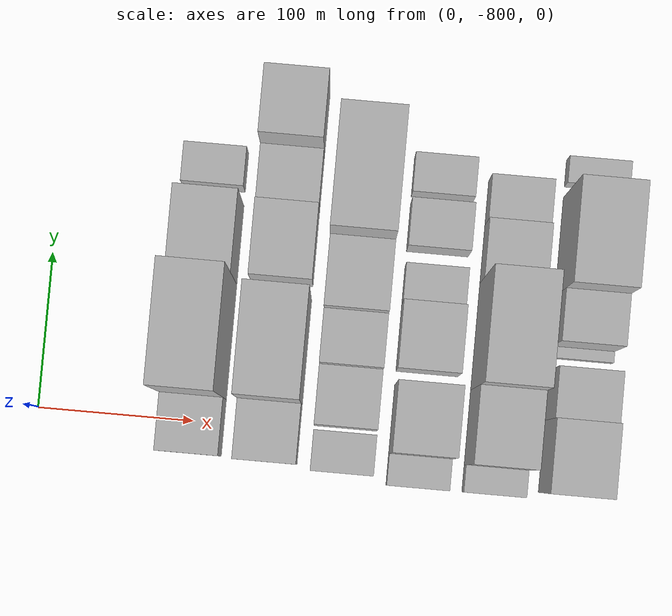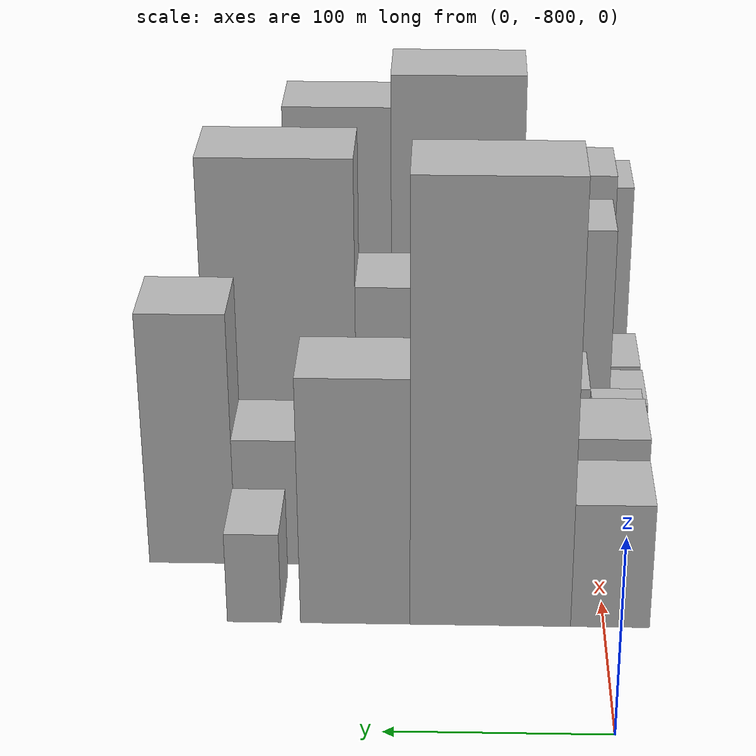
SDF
<sdf version="1.6">
 <world name="default">
  <model name="building_1">
   <static>1</static>
   <pose>100.0000 -802.7272 0 0.000000 0.000000 0.000000</pose>
   <link name="link">
    <pose>0 0 33.00 0 0 0</pose>
    <collision name="collision"><geometry><box><size>40.0000 36.5455 66.0000</size></box></geometry></collision>
    <visual name="visual">
     <cast_shadows>0</cast_shadows>
     <geometry><box><size>40.0000 36.5455 66.0000</size></box></geometry>
     <material>
      <script>
       <uri>model://HANNAS_wall/materials/scripts</uri>
       <uri>model://HANNAS_wall/materials/textures</uri>
       <name>vrc/HANNAS_wall</name>
      </script>
     </material>
    </visual>
   </link>
  </model>
  <model name="building_2">
   <static>1</static>
   <pose>100.0000 -747.2606 0 0.000000 0.000000 0.000000</pose>
   <link name="link">
    <pose>0 0 112.50 0 0 0</pose>
    <collision name="collision"><geometry><box><size>40.0000 74.3877 225.0000</size></box></geometry></collision>
    <visual name="visual">
     <cast_shadows>0</cast_shadows>
     <geometry><box><size>40.0000 74.3877 225.0000</size></box></geometry>
     <material>
      <script>
       <uri>model://HANNAS_wall/materials/scripts</uri>
       <uri>model://HANNAS_wall/materials/textures</uri>
       <name>vrc/HANNAS_wall</name>
      </script>
     </material>
    </visual>
   </link>
  </model>
  <model name="building_3">
   <static>1</static>
   <pose>100.0000 -684.5921 0 0.000000 0.000000 0.000000</pose>
   <link name="link">
    <pose>0 0 64.50 0 0 0</pose>
    <collision name="collision"><geometry><box><size>40.0000 50.9493 129.0000</size></box></geometry></collision>
    <visual name="visual">
     <cast_shadows>0</cast_shadows>
     <geometry><box><size>40.0000 50.9493 129.0000</size></box></geometry>
     <material>
      <script>
       <uri>model://HANNAS_wall/materials/scripts</uri>
       <uri>model://HANNAS_wall/materials/textures</uri>
       <name>vrc/HANNAS_wall</name>
      </script>
     </material>
    </visual>
   </link>
  </model>
  <model name="building_4">
   <static>1</static>
   <pose>100.0000 -637.5863 0 0.000000 0.000000 0.000000</pose>
   <link name="link">
    <pose>0 0 24.00 0 0 0</pose>
    <collision name="collision"><geometry><box><size>40.0000 25.0623 48.0000</size></box></geometry></collision>
    <visual name="visual">
     <cast_shadows>0</cast_shadows>
     <geometry><box><size>40.0000 25.0623 48.0000</size></box></geometry>
     <material>
      <script>
       <uri>model://HANNAS_wall/materials/scripts</uri>
       <uri>model://HANNAS_wall/materials/textures</uri>
       <name>vrc/HANNAS_wall</name>
      </script>
     </material>
    </visual>
   </link>
  </model>
  <model name="building_44">
   <static>1</static>
   <pose>149.0000 -803.0353 0 0.000000 0.000000 0.000000</pose>
   <link name="link">
    <pose>0 0 36.00 0 0 0</pose>
    <collision name="collision"><geometry><box><size>40.0000 37.9294 72.0000</size></box></geometry></collision>
    <visual name="visual">
     <cast_shadows>0</cast_shadows>
     <geometry><box><size>40.0000 37.9294 72.0000</size></box></geometry>
     <material>
      <script>
       <uri>model://HANNAS_wall/materials/scripts</uri>
       <uri>model://HANNAS_wall/materials/textures</uri>
       <name>vrc/HANNAS_wall</name>
      </script>
     </material>
    </visual>
   </link>
  </model>
  <model name="building_45">
   <static>1</static>
   <pose>149.0000 -750.1033 0 0.000000 0.000000 0.000000</pose>
   <link name="link">
    <pose>0 0 88.50 0 0 0</pose>
    <collision name="collision"><geometry><box><size>40.0000 67.9345 177.0000</size></box></geometry></collision>
    <visual name="visual">
     <cast_shadows>0</cast_shadows>
     <geometry><box><size>40.0000 67.9345 177.0000</size></box></geometry>
     <material>
      <script>
       <uri>model://HANNAS_wall/materials/scripts</uri>
       <uri>model://HANNAS_wall/materials/textures</uri>
       <name>vrc/HANNAS_wall</name>
      </script>
     </material>
    </visual>
   </link>
  </model>
  <model name="building_46">
   <static>1</static>
   <pose>149.0000 -683.1631 0 0.000000 0.000000 0.000000</pose>
   <link name="link">
    <pose>0 0 40.50 0 0 0</pose>
    <collision name="collision"><geometry><box><size>40.0000 47.9459 81.0000</size></box></geometry></collision>
    <visual name="visual">
     <cast_shadows>0</cast_shadows>
     <geometry><box><size>40.0000 47.9459 81.0000</size></box></geometry>
     <material>
      <script>
       <uri>model://HANNAS_wall/materials/scripts</uri>
       <uri>model://HANNAS_wall/materials/textures</uri>
       <name>vrc/HANNAS_wall</name>
      </script>
     </material>
    </visual>
   </link>
  </model>
  <model name="building_47">
   <static>1</static>
   <pose>149.0000 -641.7126 0 0.000000 0.000000 0.000000</pose>
   <link name="link">
    <pose>0 0 34.50 0 0 0</pose>
    <collision name="collision"><geometry><box><size>40.0000 34.9551 69.0000</size></box></geometry></collision>
    <visual name="visual">
     <cast_shadows>0</cast_shadows>
     <geometry><box><size>40.0000 34.9551 69.0000</size></box></geometry>
     <material>
      <script>
       <uri>model://HANNAS_wall/materials/scripts</uri>
       <uri>model://HANNAS_wall/materials/textures</uri>
       <name>vrc/HANNAS_wall</name>
      </script>
     </material>
    </visual>
   </link>
  </model>
  <model name="building_48">
   <static>1</static>
   <pose>149.0000 -603.1813 0 0.000000 0.000000 0.000000</pose>
   <link name="link">
    <pose>0 0 67.50 0 0 0</pose>
    <collision name="collision"><geometry><box><size>40.0000 42.1076 135.0000</size></box></geometry></collision>
    <visual name="visual">
     <cast_shadows>0</cast_shadows>
     <geometry><box><size>40.0000 42.1076 135.0000</size></box></geometry>
     <material>
      <script>
       <uri>model://HANNAS_wall/materials/scripts</uri>
       <uri>model://HANNAS_wall/materials/textures</uri>
       <name>vrc/HANNAS_wall</name>
      </script>
     </material>
    </visual>
   </link>
  </model>
  <model name="building_84">
   <static>1</static>
   <pose>198.0000 -812.0581 0 0.000000 0.000000 0.000000</pose>
   <link name="link">
    <pose>0 0 25.50 0 0 0</pose>
    <collision name="collision"><geometry><box><size>40.0000 25.8838 51.0000</size></box></geometry></collision>
    <visual name="visual">
     <cast_shadows>0</cast_shadows>
     <geometry><box><size>40.0000 25.8838 51.0000</size></box></geometry>
     <material>
      <script>
       <uri>model://HANNAS_wall/materials/scripts</uri>
       <uri>model://HANNAS_wall/materials/textures</uri>
       <name>vrc/HANNAS_wall</name>
      </script>
     </material>
    </visual>
   </link>
  </model>
  <model name="building_85">
   <static>1</static>
   <pose>198.0000 -777.2414 0 0.000000 0.000000 0.000000</pose>
   <link name="link">
    <pose>0 0 36.00 0 0 0</pose>
    <collision name="collision"><geometry><box><size>40.0000 37.7497 72.0000</size></box></geometry></collision>
    <visual name="visual">
     <cast_shadows>0</cast_shadows>
     <geometry><box><size>40.0000 37.7497 72.0000</size></box></geometry>
     <material>
      <script>
       <uri>model://HANNAS_wall/materials/scripts</uri>
       <uri>model://HANNAS_wall/materials/textures</uri>
       <name>vrc/HANNAS_wall</name>
      </script>
     </material>
    </visual>
   </link>
  </model>
  <model name="building_86">
   <static>1</static>
   <pose>198.0000 -741.5495 0 0.000000 0.000000 0.000000</pose>
   <link name="link">
    <pose>0 0 49.50 0 0 0</pose>
    <collision name="collision"><geometry><box><size>40.0000 33.6341 99.0000</size></box></geometry></collision>
    <visual name="visual">
     <cast_shadows>0</cast_shadows>
     <geometry><box><size>40.0000 33.6341 99.0000</size></box></geometry>
     <material>
      <script>
       <uri>model://HANNAS_wall/materials/scripts</uri>
       <uri>model://HANNAS_wall/materials/textures</uri>
       <name>vrc/HANNAS_wall</name>
      </script>
     </material>
    </visual>
   </link>
  </model>
  <model name="building_87">
   <static>1</static>
   <pose>198.0000 -702.9421 0 0.000000 0.000000 0.000000</pose>
   <link name="link">
    <pose>0 0 63.00 0 0 0</pose>
    <collision name="collision"><geometry><box><size>40.0000 43.5806 126.0000</size></box></geometry></collision>
    <visual name="visual">
     <cast_shadows>0</cast_shadows>
     <geometry><box><size>40.0000 43.5806 126.0000</size></box></geometry>
     <material>
      <script>
       <uri>model://HANNAS_wall/materials/scripts</uri>
       <uri>model://HANNAS_wall/materials/textures</uri>
       <name>vrc/HANNAS_wall</name>
      </script>
     </material>
    </visual>
   </link>
  </model>
  <model name="building_88">
   <static>1</static>
   <pose>198.0000 -643.9650 0 0.000000 0.000000 0.000000</pose>
   <link name="link">
    <pose>0 0 96.00 0 0 0</pose>
    <collision name="collision"><geometry><box><size>40.0000 74.3737 192.0000</size></box></geometry></collision>
    <visual name="visual">
     <cast_shadows>0</cast_shadows>
     <geometry><box><size>40.0000 74.3737 192.0000</size></box></geometry>
     <material>
      <script>
       <uri>model://HANNAS_wall/materials/scripts</uri>
       <uri>model://HANNAS_wall/materials/textures</uri>
       <name>vrc/HANNAS_wall</name>
      </script>
     </material>
    </visual>
   </link>
  </model>
  <model name="building_124">
   <static>1</static>
   <pose>247.0000 -819.8785 0 0.000000 0.000000 0.000000</pose>
   <link name="link">
    <pose>0 0 18.00 0 0 0</pose>
    <collision name="collision"><geometry><box><size>40.0000 20.2429 36.0000</size></box></geometry></collision>
    <visual name="visual">
     <cast_shadows>0</cast_shadows>
     <geometry><box><size>40.0000 20.2429 36.0000</size></box></geometry>
     <material>
      <script>
       <uri>model://HANNAS_wall/materials/scripts</uri>
       <uri>model://HANNAS_wall/materials/textures</uri>
       <name>vrc/HANNAS_wall</name>
      </script>
     </material>
    </visual>
   </link>
  </model>
  <model name="building_125">
   <static>1</static>
   <pose>247.0000 -787.7049 0 0.000000 0.000000 0.000000</pose>
   <link name="link">
    <pose>0 0 67.50 0 0 0</pose>
    <collision name="collision"><geometry><box><size>40.0000 44.1044 135.0000</size></box></geometry></collision>
    <visual name="visual">
     <cast_shadows>0</cast_shadows>
     <geometry><box><size>40.0000 44.1044 135.0000</size></box></geometry>
     <material>
      <script>
       <uri>model://HANNAS_wall/materials/scripts</uri>
       <uri>model://HANNAS_wall/materials/textures</uri>
       <name>vrc/HANNAS_wall</name>
      </script>
     </material>
    </visual>
   </link>
  </model>
  <model name="building_126">
   <static>1</static>
   <pose>247.0000 -735.1640 0 0.000000 0.000000 0.000000</pose>
   <link name="link">
    <pose>0 0 37.50 0 0 0</pose>
    <collision name="collision"><geometry><box><size>40.0000 42.9772 75.0000</size></box></geometry></collision>
    <visual name="visual">
     <cast_shadows>0</cast_shadows>
     <geometry><box><size>40.0000 42.9772 75.0000</size></box></geometry>
     <material>
      <script>
       <uri>model://HANNAS_wall/materials/scripts</uri>
       <uri>model://HANNAS_wall/materials/textures</uri>
       <name>vrc/HANNAS_wall</name>
      </script>
     </material>
    </visual>
   </link>
  </model>
  <model name="building_127">
   <static>1</static>
   <pose>247.0000 -701.3546 0 0.000000 0.000000 0.000000</pose>
   <link name="link">
    <pose>0 0 24.00 0 0 0</pose>
    <collision name="collision"><geometry><box><size>40.0000 24.6417 48.0000</size></box></geometry></collision>
    <visual name="visual">
     <cast_shadows>0</cast_shadows>
     <geometry><box><size>40.0000 24.6417 48.0000</size></box></geometry>
     <material>
      <script>
       <uri>model://HANNAS_wall/materials/scripts</uri>
       <uri>model://HANNAS_wall/materials/textures</uri>
       <name>vrc/HANNAS_wall</name>
      </script>
     </material>
    </visual>
   </link>
  </model>
  <model name="building_128">
   <static>1</static>
   <pose>247.0000 -663.8249 0 0.000000 0.000000 0.000000</pose>
   <link name="link">
    <pose>0 0 30.00 0 0 0</pose>
    <collision name="collision"><geometry><box><size>40.0000 30.4176 60.0000</size></box></geometry></collision>
    <visual name="visual">
     <cast_shadows>0</cast_shadows>
     <geometry><box><size>40.0000 30.4176 60.0000</size></box></geometry>
     <material>
      <script>
       <uri>model://HANNAS_wall/materials/scripts</uri>
       <uri>model://HANNAS_wall/materials/textures</uri>
       <name>vrc/HANNAS_wall</name>
      </script>
     </material>
    </visual>
   </link>
  </model>
  <model name="building_129">
   <static>1</static>
   <pose>247.0000 -631.0312 0 0.000000 0.000000 0.000000</pose>
   <link name="link">
    <pose>0 0 22.50 0 0 0</pose>
    <collision name="collision"><geometry><box><size>40.0000 25.1698 45.0000</size></box></geometry></collision>
    <visual name="visual">
     <cast_shadows>0</cast_shadows>
     <geometry><box><size>40.0000 25.1698 45.0000</size></box></geometry>
     <material>
      <script>
       <uri>model://HANNAS_wall/materials/scripts</uri>
       <uri>model://HANNAS_wall/materials/textures</uri>
       <name>vrc/HANNAS_wall</name>
      </script>
     </material>
    </visual>
   </link>
  </model>
  <model name="building_166">
   <static>1</static>
   <pose>296.0000 -821.2786 0 0.000000 0.000000 0.000000</pose>
   <link name="link">
    <pose>0 0 16.50 0 0 0</pose>
    <collision name="collision"><geometry><box><size>40.0000 17.4428 33.0000</size></box></geometry></collision>
    <visual name="visual">
     <cast_shadows>0</cast_shadows>
     <geometry><box><size>40.0000 17.4428 33.0000</size></box></geometry>
     <material>
      <script>
       <uri>model://HANNAS_wall/materials/scripts</uri>
       <uri>model://HANNAS_wall/materials/textures</uri>
       <name>vrc/HANNAS_wall</name>
      </script>
     </material>
    </visual>
   </link>
  </model>
  <model name="building_167">
   <static>1</static>
   <pose>296.0000 -788.5446 0 0.000000 0.000000 0.000000</pose>
   <link name="link">
    <pose>0 0 72.00 0 0 0</pose>
    <collision name="collision"><geometry><box><size>40.0000 48.0253 144.0000</size></box></geometry></collision>
    <visual name="visual">
     <cast_shadows>0</cast_shadows>
     <geometry><box><size>40.0000 48.0253 144.0000</size></box></geometry>
     <material>
      <script>
       <uri>model://HANNAS_wall/materials/scripts</uri>
       <uri>model://HANNAS_wall/materials/textures</uri>
       <name>vrc/HANNAS_wall</name>
      </script>
     </material>
    </visual>
   </link>
  </model>
  <model name="building_168">
   <static>1</static>
   <pose>296.0000 -730.0105 0 0.000000 0.000000 0.000000</pose>
   <link name="link">
    <pose>0 0 99.00 0 0 0</pose>
    <collision name="collision"><geometry><box><size>40.0000 69.0429 198.0000</size></box></geometry></collision>
    <visual name="visual">
     <cast_shadows>0</cast_shadows>
     <geometry><box><size>40.0000 69.0429 198.0000</size></box></geometry>
     <material>
      <script>
       <uri>model://HANNAS_wall/materials/scripts</uri>
       <uri>model://HANNAS_wall/materials/textures</uri>
       <name>vrc/HANNAS_wall</name>
      </script>
     </material>
    </visual>
   </link>
  </model>
  <model name="building_169">
   <static>1</static>
   <pose>296.0000 -676.6890 0 0.000000 0.000000 0.000000</pose>
   <link name="link">
    <pose>0 0 34.50 0 0 0</pose>
    <collision name="collision"><geometry><box><size>40.0000 37.6001 69.0000</size></box></geometry></collision>
    <visual name="visual">
     <cast_shadows>0</cast_shadows>
     <geometry><box><size>40.0000 37.6001 69.0000</size></box></geometry>
     <material>
      <script>
       <uri>model://HANNAS_wall/materials/scripts</uri>
       <uri>model://HANNAS_wall/materials/textures</uri>
       <name>vrc/HANNAS_wall</name>
      </script>
     </material>
    </visual>
   </link>
  </model>
  <model name="building_170">
   <static>1</static>
   <pose>296.0000 -643.4078 0 0.000000 0.000000 0.000000</pose>
   <link name="link">
    <pose>0 0 27.00 0 0 0</pose>
    <collision name="collision"><geometry><box><size>40.0000 28.9624 54.0000</size></box></geometry></collision>
    <visual name="visual">
     <cast_shadows>0</cast_shadows>
     <geometry><box><size>40.0000 28.9624 54.0000</size></box></geometry>
     <material>
      <script>
       <uri>model://HANNAS_wall/materials/scripts</uri>
       <uri>model://HANNAS_wall/materials/textures</uri>
       <name>vrc/HANNAS_wall</name>
      </script>
     </material>
    </visual>
   </link>
  </model>
  <model name="building_211">
   <static>1</static>
   <pose>345.0000 -802.8413 0 0.000000 0.000000 0.000000</pose>
   <link name="link">
    <pose>0 0 58.50 0 0 0</pose>
    <collision name="collision"><geometry><box><size>40.0000 46.3174 117.0000</size></box></geometry></collision>
    <visual name="visual">
     <cast_shadows>0</cast_shadows>
     <geometry><box><size>40.0000 46.3174 117.0000</size></box></geometry>
     <material>
      <script>
       <uri>model://HANNAS_wall/materials/scripts</uri>
       <uri>model://HANNAS_wall/materials/textures</uri>
       <name>vrc/HANNAS_wall</name>
      </script>
     </material>
    </visual>
   </link>
  </model>
  <model name="building_212">
   <static>1</static>
   <pose>345.0000 -763.6009 0 0.000000 0.000000 0.000000</pose>
   <link name="link">
    <pose>0 0 51.00 0 0 0</pose>
    <collision name="collision"><geometry><box><size>40.0000 32.1633 102.0000</size></box></geometry></collision>
    <visual name="visual">
     <cast_shadows>0</cast_shadows>
     <geometry><box><size>40.0000 32.1633 102.0000</size></box></geometry>
     <material>
      <script>
       <uri>model://HANNAS_wall/materials/scripts</uri>
       <uri>model://HANNAS_wall/materials/textures</uri>
       <name>vrc/HANNAS_wall</name>
      </script>
     </material>
    </visual>
   </link>
  </model>
  <model name="building_213">
   <static>1</static>
   <pose>345.0000 -735.8707 0 0.000000 0.000000 0.000000</pose>
   <link name="link">
    <pose>0 0 9.00 0 0 0</pose>
    <collision name="collision"><geometry><box><size>40.0000 7.2972 18.0000</size></box></geometry></collision>
    <visual name="visual">
     <cast_shadows>0</cast_shadows>
     <geometry><box><size>40.0000 7.2972 18.0000</size></box></geometry>
     <material>
      <script>
       <uri>model://HANNAS_wall/materials/scripts</uri>
       <uri>model://HANNAS_wall/materials/textures</uri>
       <name>vrc/HANNAS_wall</name>
      </script>
     </material>
    </visual>
   </link>
  </model>
  <model name="building_214">
   <static>1</static>
   <pose>345.0000 -715.9479 0 0.000000 0.000000 0.000000</pose>
   <link name="link">
    <pose>0 0 51.00 0 0 0</pose>
    <collision name="collision"><geometry><box><size>40.0000 32.5482 102.0000</size></box></geometry></collision>
    <visual name="visual">
     <cast_shadows>0</cast_shadows>
     <geometry><box><size>40.0000 32.5482 102.0000</size></box></geometry>
     <material>
      <script>
       <uri>model://HANNAS_wall/materials/scripts</uri>
       <uri>model://HANNAS_wall/materials/textures</uri>
       <name>vrc/HANNAS_wall</name>
      </script>
     </material>
    </visual>
   </link>
  </model>
  <model name="building_215">
   <static>1</static>
   <pose>345.0000 -667.5069 0 0.000000 0.000000 0.000000</pose>
   <link name="link">
    <pose>0 0 81.00 0 0 0</pose>
    <collision name="collision"><geometry><box><size>40.0000 64.3340 162.0000</size></box></geometry></collision>
    <visual name="visual">
     <cast_shadows>0</cast_shadows>
     <geometry><box><size>40.0000 64.3340 162.0000</size></box></geometry>
     <material>
      <script>
       <uri>model://HANNAS_wall/materials/scripts</uri>
       <uri>model://HANNAS_wall/materials/textures</uri>
       <name>vrc/HANNAS_wall</name>
      </script>
     </material>
    </visual>
   </link>
  </model>
  <model name="building_216">
   <static>1</static>
   <pose>345.0000 -619.7476 0 0.000000 0.000000 0.000000</pose>
   <link name="link">
    <pose>0 0 16.50 0 0 0</pose>
    <collision name="collision"><geometry><box><size>40.0000 17.1845 33.0000</size></box></geometry></collision>
    <visual name="visual">
     <cast_shadows>0</cast_shadows>
     <geometry><box><size>40.0000 17.1845 33.0000</size></box></geometry>
     <material>
      <script>
       <uri>model://HANNAS_wall/materials/scripts</uri>
       <uri>model://HANNAS_wall/materials/textures</uri>
       <name>vrc/HANNAS_wall</name>
      </script>
     </material>
    </visual>
   </link>
  </model>
 </world>
</sdf>
